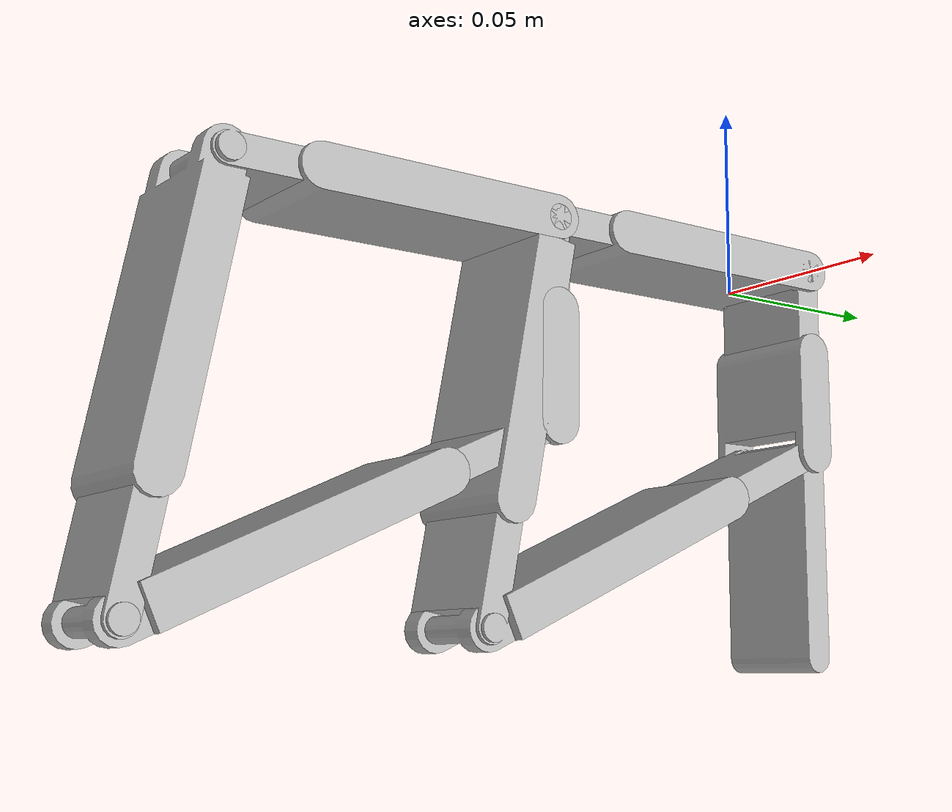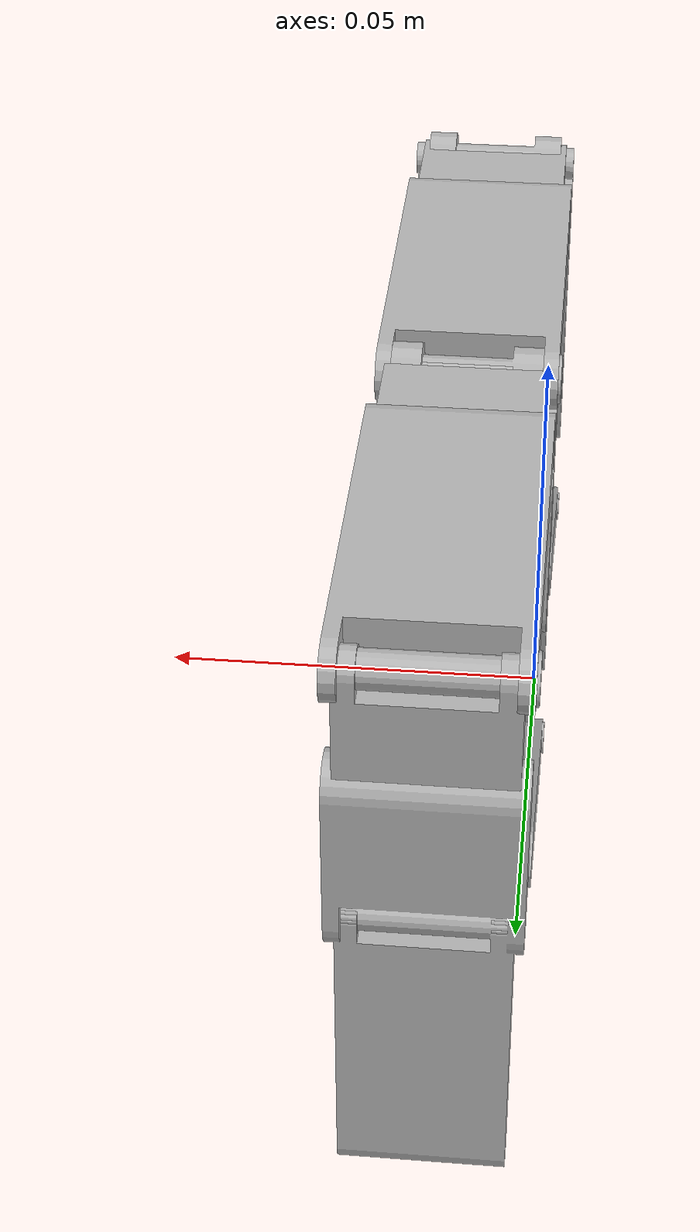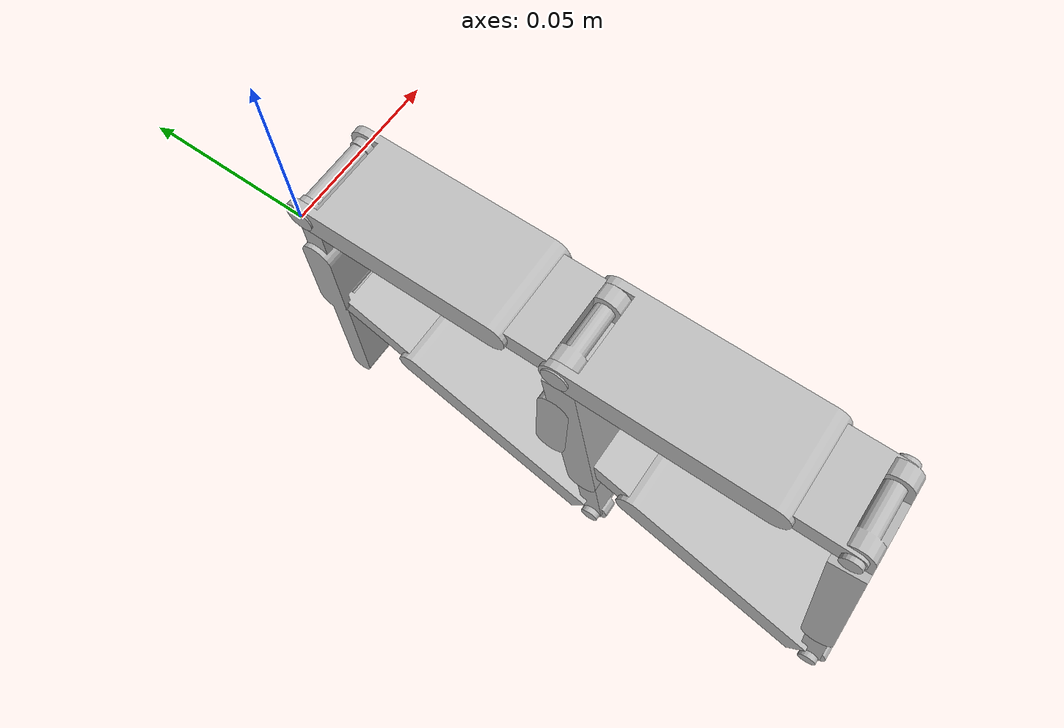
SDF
<sdf version='1.7'>
  <model name='larva54'>
    <link name='base_link'>
      <inertial>
        <pose>-0.0005 0 -0 0 -0 0</pose>
        <mass>5.02655e-05</mass>
        <inertia>
          <ixx>4.02124e-10</ixx>
          <ixy>-5.68087e-26</ixy>
          <ixz>-7.06335e-26</ixz>
          <iyy>2.05251e-10</iyy>
          <iyz>1.9387e-26</iyz>
          <izz>2.05251e-10</izz>
        </inertia>
      </inertial>
      <collision name='base_link_collision'>
        <pose>0 0 0 0 -0 0</pose>
        <geometry>
          <mesh>
            <scale>1 1 1</scale>
            <uri>model://larva54/meshes/base_link.STL</uri>
          </mesh>
        </geometry>
      </collision>
      <visual name='base_link_visual'>
        <pose>0 0 0 0 -0 0</pose>
        <geometry>
          <mesh>
            <scale>1 1 1</scale>
            <uri>model://larva54/meshes/base_link.STL</uri>
          </mesh>
        </geometry>
      </visual>
    </link>
    <joint name='rjoint11' type='revolute'>
      <pose relative_to='base_link'>-0.0005 0 0 0 -0 0</pose>
      <parent>base_link</parent>
      <child>rsec11</child>
      <axis>
        <xyz>1 0 0</xyz>
        <limit>
          <lower>-3.14</lower>
          <upper>3.14</upper>
          <effort>100</effort>
          <velocity>100</velocity>
        </limit>
        <dynamics>
          <damping>0.001</damping>
          <friction>0</friction>
          <spring_reference>0</spring_reference>
          <spring_stiffness>0.05</spring_stiffness>
        </dynamics>
      </axis>
    </joint>
    <link name='rsec11'>
      <pose relative_to='rjoint11'>0 0 0 0 -0 0</pose>
      <inertial>
        <pose>0.015 -0.027248 0 0 -0 0</pose>
        <mass>0.00814248</mass>
        <inertia>
          <ixx>2.58091e-06</ixx>
          <ixy>-3.71117e-21</ixy>
          <ixz>-6.24497e-22</ixz>
          <iyy>9.04351e-07</iyy>
          <iyz>1.02703e-20</iyz>
          <izz>3.27245e-06</izz>
        </inertia>
      </inertial>
      <collision name='rsec11_collision'>
        <pose>0 0 0 0 -0 0</pose>
        <geometry>
          <mesh>
            <scale>1 1 1</scale>
            <uri>model://larva54/meshes/rsec11.STL</uri>
          </mesh>
        </geometry>
      </collision>
      <visual name='rsec11_visual'>
        <pose>0 0 0 0 -0 0</pose>
        <geometry>
          <mesh>
            <scale>1 1 1</scale>
            <uri>model://larva54/meshes/rsec11.STL</uri>
          </mesh>
        </geometry>
      </visual>
    </link>
    <joint name='pjoint11' type='prismatic'>
      <pose relative_to='rsec11'>0.015 -0.008 0 0 -0 0</pose>
      <parent>rsec11</parent>
      <child>psec11</child>
      <axis>
        <xyz>0 -1 0</xyz>
        <limit>
          <lower>-0.01</lower>
          <upper>0.01</upper>
          <effort>100</effort>
          <velocity>100</velocity>
        </limit>
        <dynamics>
          <damping>0.001</damping>
          <friction>0</friction>
          <spring_reference>0</spring_reference>
          <spring_stiffness>0.05</spring_stiffness>
        </dynamics>
      </axis>
    </joint>
    <link name='psec11'>
      <pose relative_to='pjoint11'>0 0 0 0 -0 0</pose>
      <inertial>
        <pose>0 -0.044436 -0 0 -0 0</pose>
        <mass>0.00950291</mass>
        <inertia>
          <ixx>2.06911e-06</ixx>
          <ixy>1.61045e-21</ixy>
          <ixz>1.63625e-24</ixz>
          <iyy>6.31015e-07</iyy>
          <iyz>2.96462e-21</iyz>
          <izz>2.62322e-06</izz>
        </inertia>
      </inertial>
      <collision name='psec11_collision'>
        <pose>0 0 0 0 -0 0</pose>
        <geometry>
          <mesh>
            <scale>1 1 1</scale>
            <uri>model://larva54/meshes/psec11.STL</uri>
          </mesh>
        </geometry>
      </collision>
      <visual name='psec11_visual'>
        <pose>0 0 0 0 -0 0</pose>
        <geometry>
          <mesh>
            <scale>1 1 1</scale>
            <uri>model://larva54/meshes/psec11.STL</uri>
          </mesh>
        </geometry>
      </visual>
    </link>
    <joint name='rjoint12' type='revolute'>
      <pose relative_to='psec11'>-0.015 -0.072 0 0 -0 0</pose>
      <parent>psec11</parent>
      <child>rsec12</child>
      <axis>
        <xyz>1 0 0</xyz>
        <limit>
          <lower>-3.14</lower>
          <upper>3.14</upper>
          <effort>100</effort>
          <velocity>100</velocity>
        </limit>
        <dynamics>
          <damping>0.001</damping>
          <friction>0</friction>
          <spring_reference>0</spring_reference>
          <spring_stiffness>0.05</spring_stiffness>
        </dynamics>
      </axis>
    </joint>
    <link name='rsec12'>
      <pose relative_to='rjoint12'>0 0 0 0 -0 0</pose>
      <inertial>
        <pose>0.015 -0.005218 -0.028219 0 -0 0</pose>
        <mass>0.00900246</mass>
        <inertia>
          <ixx>3.53141e-06</ixx>
          <ixy>-1.21392e-21</ixy>
          <ixz>-2.01857e-21</ixz>
          <iyy>4.16191e-06</iyy>
          <iyz>-5.89211e-07</iyz>
          <izz>1.08448e-06</izz>
        </inertia>
      </inertial>
      <collision name='rsec12_collision'>
        <pose>0 0 0 0 -0 0</pose>
        <geometry>
          <mesh>
            <scale>1 1 1</scale>
            <uri>model://larva54/meshes/rsec12.STL</uri>
          </mesh>
        </geometry>
      </collision>
      <visual name='rsec12_visual'>
        <pose>0 0 0 0 -0 0</pose>
        <geometry>
          <mesh>
            <scale>1 1 1</scale>
            <uri>model://larva54/meshes/rsec12.STL</uri>
          </mesh>
        </geometry>
      </visual>
    </link>
    <joint name='pjoint12' type='prismatic'>
      <pose relative_to='rsec12'>0.015 -0.001455 -0.007867 -1.75365 0 0</pose>
      <parent>rsec12</parent>
      <child>psec12</child>
      <axis>
        <xyz>0 1 0</xyz>
        <limit>
          <lower>-0.01</lower>
          <upper>0.01</upper>
          <effort>100</effort>
          <velocity>100</velocity>
        </limit>
        <dynamics>
          <damping>0.001</damping>
          <friction>0</friction>
          <spring_reference>0</spring_reference>
          <spring_stiffness>0.05</spring_stiffness>
        </dynamics>
      </axis>
    </joint>
    <link name='psec12'>
      <pose relative_to='pjoint12'>0 0 0 0 -0 0</pose>
      <inertial>
        <pose>-0 0.05166 0 0 -0 0</pose>
        <mass>0.0113929</mass>
        <inertia>
          <ixx>3.53005e-06</ixx>
          <ixy>-1.63493e-21</ixy>
          <ixz>7.98891e-23</ixz>
          <iyy>7.5355e-07</iyy>
          <iyz>1.03232e-21</iyz>
          <izz>4.19127e-06</izz>
        </inertia>
      </inertial>
      <collision name='psec12_collision'>
        <pose>0 0 0 0 -0 0</pose>
        <geometry>
          <mesh>
            <scale>1 1 1</scale>
            <uri>model://larva54/meshes/psec12.STL</uri>
          </mesh>
        </geometry>
      </collision>
      <visual name='psec12_visual'>
        <pose>0 0 0 0 -0 0</pose>
        <geometry>
          <mesh>
            <scale>1 1 1</scale>
            <uri>model://larva54/meshes/psec12.STL</uri>
          </mesh>
        </geometry>
      </visual>
    </link>
    <joint name='rjoint13' type='revolute'>
      <pose relative_to='psec12'>-0.015462 0.084232 0 1.75365 -0 0</pose>
      <parent>psec12</parent>
      <child>rsec13</child>
      <axis>
        <xyz>1 0 0</xyz>
        <limit>
          <lower>-3.14</lower>
          <upper>3.14</upper>
          <effort>100</effort>
          <velocity>100</velocity>
        </limit>
        <dynamics>
          <damping>0.001</damping>
          <friction>0</friction>
          <spring_reference>0</spring_reference>
          <spring_stiffness>0.05</spring_stiffness>
        </dynamics>
      </axis>
    </joint>
    <link name='rsec13'>
      <pose relative_to='rjoint13'>0 0 0 0 -0 0</pose>
      <inertial>
        <pose>0.015058 0.030463 0.014045 0 -0 0</pose>
        <mass>0.0101125</mass>
        <inertia>
          <ixx>5.21578e-06</ixx>
          <ixy>1.42781e-08</ixy>
          <ixz>6.58265e-09</ixz>
          <iyy>1.96896e-06</iyy>
          <iyz>-1.88023e-06</iyz>
          <izz>5.18041e-06</izz>
        </inertia>
      </inertial>
      <collision name='rsec13_collision'>
        <pose>0 0 0 0 -0 0</pose>
        <geometry>
          <mesh>
            <scale>1 1 1</scale>
            <uri>model://larva54/meshes/rsec13.STL</uri>
          </mesh>
        </geometry>
      </collision>
      <visual name='rsec13_visual'>
        <pose>0 0 0 0 -0 0</pose>
        <geometry>
          <mesh>
            <scale>1 1 1</scale>
            <uri>model://larva54/meshes/rsec13.STL</uri>
          </mesh>
        </geometry>
      </visual>
    </link>
    <joint name='pjoint13' type='prismatic'>
      <pose relative_to='rsec13'>0.015462 0.007265 0.003349 0.43199 -0 0</pose>
      <parent>rsec13</parent>
      <child>psec13</child>
      <axis>
        <xyz>0 1 0</xyz>
        <limit>
          <lower>-0.01</lower>
          <upper>0.01</upper>
          <effort>100</effort>
          <velocity>100</velocity>
        </limit>
        <dynamics>
          <damping>0.001</damping>
          <friction>0</friction>
          <spring_reference>0</spring_reference>
          <spring_stiffness>0.05</spring_stiffness>
        </dynamics>
      </axis>
    </joint>
    <link name='psec13'>
      <pose relative_to='pjoint13'>0 0 0 0 -0 0</pose>
      <inertial>
        <pose>0 0.063485 0 0 -0 0</pose>
        <mass>0.0123379</mass>
        <inertia>
          <ixx>4.46824e-06</ixx>
          <ixy>-9.88411e-22</ixy>
          <ixz>1.0331e-22</ixz>
          <iyy>8.14818e-07</iyy>
          <iyz>8.62915e-21</iyz>
          <izz>5.18301e-06</izz>
        </inertia>
      </inertial>
      <collision name='psec13_collision'>
        <pose>0 0 0 0 -0 0</pose>
        <geometry>
          <mesh>
            <scale>1 1 1</scale>
            <uri>model://larva54/meshes/psec13.STL</uri>
          </mesh>
        </geometry>
      </collision>
      <visual name='psec13_visual'>
        <pose>0 0 0 0 -0 0</pose>
        <geometry>
          <mesh>
            <scale>1 1 1</scale>
            <uri>model://larva54/meshes/psec13.STL</uri>
          </mesh>
        </geometry>
      </visual>
    </link>
    <joint name='rjoint14' type='revolute'>
      <pose relative_to='psec13'>-0.015 0.09856 0 -0.43199 0 0</pose>
      <parent>psec13</parent>
      <child>rsec14</child>
      <axis>
        <xyz>1 0 0</xyz>
        <limit>
          <lower>-3.14</lower>
          <upper>3.14</upper>
          <effort>100</effort>
          <velocity>100</velocity>
        </limit>
        <dynamics>
          <damping>0.001</damping>
          <friction>0</friction>
          <spring_reference>0</spring_reference>
          <spring_stiffness>0.05</spring_stiffness>
        </dynamics>
      </axis>
    </joint>
    <link name='rsec14'>
      <pose relative_to='rjoint14'>0 0 0 0 -0 0</pose>
      <inertial>
        <pose>0.015 0 -0.015718 0 -0 0</pose>
        <mass>0.0137604</mass>
        <inertia>
          <ixx>2.3323e-06</ixx>
          <ixy>-5.55956e-22</ixy>
          <ixz>9.95418e-22</ixz>
          <iyy>3.25281e-06</iyy>
          <iyz>-2.17052e-21</iyz>
          <izz>1.08924e-06</izz>
        </inertia>
      </inertial>
      <collision name='rsec14_collision'>
        <pose>0 0 0 0 -0 0</pose>
        <geometry>
          <mesh>
            <scale>1 1 1</scale>
            <uri>model://larva54/meshes/rsec14.STL</uri>
          </mesh>
        </geometry>
      </collision>
      <visual name='rsec14_visual'>
        <pose>0 0 0 0 -0 0</pose>
        <geometry>
          <mesh>
            <scale>1 1 1</scale>
            <uri>model://larva54/meshes/rsec14.STL</uri>
          </mesh>
        </geometry>
      </visual>
    </link>
    <joint name='pjoint14' type='prismatic'>
      <pose relative_to='rsec14'>0.015 0 0.008 1.5708 -0 0</pose>
      <parent>rsec14</parent>
      <child>psec14</child>
      <axis>
        <xyz>0 1 0</xyz>
        <limit>
          <lower>-0.01</lower>
          <upper>0.01</upper>
          <effort>100</effort>
          <velocity>100</velocity>
        </limit>
        <dynamics>
          <damping>0.001</damping>
          <friction>0</friction>
          <spring_reference>0</spring_reference>
          <spring_stiffness>0.05</spring_stiffness>
        </dynamics>
      </axis>
    </joint>
    <link name='psec14'>
      <pose relative_to='pjoint14'>0 0 0 0 -0 0</pose>
      <inertial>
        <pose>-0 0.021804 -0 0 -0 0</pose>
        <mass>0.00694914</mass>
        <inertia>
          <ixx>5.77072e-07</ixx>
          <ixy>-5.29859e-22</ixy>
          <ixz>-2.7593e-22</ixz>
          <iyy>4.75978e-07</iyy>
          <iyz>-5.29396e-22</iyz>
          <izz>1.00012e-06</izz>
        </inertia>
      </inertial>
      <collision name='psec14_collision'>
        <pose>0 0 0 0 -0 0</pose>
        <geometry>
          <mesh>
            <scale>1 1 1</scale>
            <uri>model://larva54/meshes/psec14.STL</uri>
          </mesh>
        </geometry>
      </collision>
      <visual name='psec14_visual'>
        <pose>0 0 0 0 -0 0</pose>
        <geometry>
          <mesh>
            <scale>1 1 1</scale>
            <uri>model://larva54/meshes/psec14.STL</uri>
          </mesh>
        </geometry>
      </visual>
    </link>
    <joint name='rjoint21' type='revolute'>
      <pose relative_to='rsec12'>0 0 0 0 -0 0</pose>
      <parent>rsec12</parent>
      <child>rsec21</child>
      <axis>
        <xyz>1 0 0</xyz>
        <limit>
          <lower>-3.14</lower>
          <upper>3.14</upper>
          <effort>100</effort>
          <velocity>100</velocity>
        </limit>
        <dynamics>
          <damping>0.001</damping>
          <friction>0</friction>
          <spring_reference>0</spring_reference>
          <spring_stiffness>0.05</spring_stiffness>
        </dynamics>
      </axis>
    </joint>
    <link name='rsec21'>
      <pose relative_to='rjoint21'>0 0 0 0 -0 0</pose>
      <inertial>
        <pose>0.015 -0.027248 -0 0 -0 0</pose>
        <mass>0.00814248</mass>
        <inertia>
          <ixx>2.58091e-06</ixx>
          <ixy>-4.06461e-21</ixy>
          <ixz>-8.36274e-22</ixz>
          <iyy>9.04351e-07</iyy>
          <iyz>2.43522e-21</iyz>
          <izz>3.27245e-06</izz>
        </inertia>
      </inertial>
      <collision name='rsec21_collision'>
        <pose>0 0 0 0 -0 0</pose>
        <geometry>
          <mesh>
            <scale>1 1 1</scale>
            <uri>model://larva54/meshes/rsec21.STL</uri>
          </mesh>
        </geometry>
      </collision>
      <visual name='rsec21_visual'>
        <pose>0 0 0 0 -0 0</pose>
        <geometry>
          <mesh>
            <scale>1 1 1</scale>
            <uri>model://larva54/meshes/rsec21.STL</uri>
          </mesh>
        </geometry>
      </visual>
    </link>
    <joint name='linkjoint12' type='revolute'>
      <pose relative_to='rsec21'>0.0005 0 0 0 -0 0</pose>
      <parent>rsec21</parent>
      <child>link12</child>
      <axis>
        <xyz>-1 0 0</xyz>
        <limit>
          <effort>100</effort>
          <velocity>100</velocity>
          <lower>-1e+16</lower>
          <upper>1e+16</upper>
        </limit>
        <dynamics>
          <damping>0.001</damping>
          <friction>0</friction>
          <spring_reference>0</spring_reference>
          <spring_stiffness>0.05</spring_stiffness>
        </dynamics>
      </axis>
    </joint>
    <link name='link12'>
      <pose relative_to='linkjoint12'>0 0 0 0 -0 0</pose>
      <inertial>
        <pose>-0.0005 0 -0 0 -0 0</pose>
        <mass>5.02655e-05</mass>
        <inertia>
          <ixx>4.02124e-10</ixx>
          <ixy>-2.63933e-25</ixy>
          <ixz>4.39488e-28</ixz>
          <iyy>2.05251e-10</iyy>
          <iyz>4.52364e-26</iyz>
          <izz>2.05251e-10</izz>
        </inertia>
      </inertial>
      <collision name='link12_collision'>
        <pose>0 0 0 0 -0 0</pose>
        <geometry>
          <mesh>
            <scale>1 1 1</scale>
            <uri>model://larva54/meshes/link12.STL</uri>
          </mesh>
        </geometry>
      </collision>
      <visual name='link12_visual'>
        <pose>0 0 0 0 -0 0</pose>
        <geometry>
          <mesh>
            <scale>1 1 1</scale>
            <uri>model://larva54/meshes/link12.STL</uri>
          </mesh>
        </geometry>
      </visual>
    </link>
    <joint name='pjoint21' type='prismatic'>
      <pose relative_to='rsec21'>0.015 -0.008 0 0 -0 0</pose>
      <parent>rsec21</parent>
      <child>psec21</child>
      <axis>
        <xyz>0 -1 0</xyz>
        <limit>
          <lower>-0.01</lower>
          <upper>0.01</upper>
          <effort>100</effort>
          <velocity>100</velocity>
        </limit>
        <dynamics>
          <damping>0.001</damping>
          <friction>0</friction>
          <spring_reference>0</spring_reference>
          <spring_stiffness>0.05</spring_stiffness>
        </dynamics>
      </axis>
    </joint>
    <link name='psec21'>
      <pose relative_to='pjoint21'>0 0 0 0 -0 0</pose>
      <inertial>
        <pose>-0 -0.044436 -0 0 -0 0</pose>
        <mass>0.00950291</mass>
        <inertia>
          <ixx>2.06911e-06</ixx>
          <ixy>-1.11625e-21</ixy>
          <ixz>4.00861e-23</ixz>
          <iyy>6.31015e-07</iyy>
          <iyz>3.78518e-21</iyz>
          <izz>2.62322e-06</izz>
        </inertia>
      </inertial>
      <collision name='psec21_collision'>
        <pose>0 0 0 0 -0 0</pose>
        <geometry>
          <mesh>
            <scale>1 1 1</scale>
            <uri>model://larva54/meshes/psec21.STL</uri>
          </mesh>
        </geometry>
      </collision>
      <visual name='psec21_visual'>
        <pose>0 0 0 0 -0 0</pose>
        <geometry>
          <mesh>
            <scale>1 1 1</scale>
            <uri>model://larva54/meshes/psec21.STL</uri>
          </mesh>
        </geometry>
      </visual>
    </link>
    <joint name='rjoint22' type='revolute'>
      <pose relative_to='psec21'>-0.015 -0.072 0 0 -0 0</pose>
      <parent>psec21</parent>
      <child>rsec22</child>
      <axis>
        <xyz>1 0 0</xyz>
        <limit>
          <lower>-3.14</lower>
          <upper>3.14</upper>
          <effort>100</effort>
          <velocity>100</velocity>
        </limit>
        <dynamics>
          <damping>0.001</damping>
          <friction>0</friction>
          <spring_reference>0</spring_reference>
          <spring_stiffness>0.05</spring_stiffness>
        </dynamics>
      </axis>
    </joint>
    <link name='rsec22'>
      <pose relative_to='rjoint22'>0 0 0 0 -0 0</pose>
      <inertial>
        <pose>0.015 -0.005218 -0.028219 0 -0 0</pose>
        <mass>0.00900246</mass>
        <inertia>
          <ixx>3.53141e-06</ixx>
          <ixy>-5.12518e-22</ixy>
          <ixz>-9.17759e-21</ixz>
          <iyy>4.16191e-06</iyy>
          <iyz>-5.89211e-07</iyz>
          <izz>1.08448e-06</izz>
        </inertia>
      </inertial>
      <collision name='rsec22_collision'>
        <pose>0 0 0 0 -0 0</pose>
        <geometry>
          <mesh>
            <scale>1 1 1</scale>
            <uri>model://larva54/meshes/rsec22.STL</uri>
          </mesh>
        </geometry>
      </collision>
      <visual name='rsec22_visual'>
        <pose>0 0 0 0 -0 0</pose>
        <geometry>
          <mesh>
            <scale>1 1 1</scale>
            <uri>model://larva54/meshes/rsec22.STL</uri>
          </mesh>
        </geometry>
      </visual>
    </link>
    <joint name='pjoint22' type='prismatic'>
      <pose relative_to='rsec22'>0.015 -0.001455 -0.007867 -1.7536 0 0</pose>
      <parent>rsec22</parent>
      <child>psec22</child>
      <axis>
        <xyz>0 1 0</xyz>
        <limit>
          <lower>-0.01</lower>
          <upper>0.01</upper>
          <effort>100</effort>
          <velocity>100</velocity>
        </limit>
        <dynamics>
          <damping>0.001</damping>
          <friction>0</friction>
          <spring_reference>0</spring_reference>
          <spring_stiffness>0.05</spring_stiffness>
        </dynamics>
      </axis>
    </joint>
    <link name='psec22'>
      <pose relative_to='pjoint22'>0 0 0 0 -0 0</pose>
      <inertial>
        <pose>-0 0.05166 0 0 -0 0</pose>
        <mass>0.0113929</mass>
        <inertia>
          <ixx>3.53005e-06</ixx>
          <ixy>1.49596e-21</ixy>
          <ixz>-1.42024e-21</ixz>
          <iyy>7.5355e-07</iyy>
          <iyz>3.04402e-21</iyz>
          <izz>4.19127e-06</izz>
        </inertia>
      </inertial>
      <collision name='psec22_collision'>
        <pose>0 0 0 0 -0 0</pose>
        <geometry>
          <mesh>
            <scale>1 1 1</scale>
            <uri>model://larva54/meshes/psec22.STL</uri>
          </mesh>
        </geometry>
      </collision>
      <visual name='psec22_visual'>
        <pose>0 0 0 0 -0 0</pose>
        <geometry>
          <mesh>
            <scale>1 1 1</scale>
            <uri>model://larva54/meshes/psec22.STL</uri>
          </mesh>
        </geometry>
      </visual>
    </link>
    <joint name='rjoint23' type='revolute'>
      <pose relative_to='psec22'>-0.015462 0.084232 0 1.7536 -0 0</pose>
      <parent>psec22</parent>
      <child>rsec23</child>
      <axis>
        <xyz>1 0 0</xyz>
        <limit>
          <lower>-3.14</lower>
          <upper>3.14</upper>
          <effort>100</effort>
          <velocity>100</velocity>
        </limit>
        <dynamics>
          <damping>0.001</damping>
          <friction>0</friction>
          <spring_reference>0</spring_reference>
          <spring_stiffness>0.05</spring_stiffness>
        </dynamics>
      </axis>
    </joint>
    <link name='rsec23'>
      <pose relative_to='rjoint23'>0 0 0 0 -0 0</pose>
      <inertial>
        <pose>0.015058 0.030463 0.014045 0 -0 0</pose>
        <mass>0.0101125</mass>
        <inertia>
          <ixx>5.21578e-06</ixx>
          <ixy>1.42781e-08</ixy>
          <ixz>6.58265e-09</ixz>
          <iyy>1.96896e-06</iyy>
          <iyz>-1.88023e-06</iyz>
          <izz>5.18041e-06</izz>
        </inertia>
      </inertial>
      <collision name='rsec23_collision'>
        <pose>0 0 0 0 -0 0</pose>
        <geometry>
          <mesh>
            <scale>1 1 1</scale>
            <uri>model://larva54/meshes/rsec23.STL</uri>
          </mesh>
        </geometry>
      </collision>
      <visual name='rsec23_visual'>
        <pose>0 0 0 0 -0 0</pose>
        <geometry>
          <mesh>
            <scale>1 1 1</scale>
            <uri>model://larva54/meshes/rsec23.STL</uri>
          </mesh>
        </geometry>
      </visual>
    </link>
    <joint name='pjoint23' type='prismatic'>
      <pose relative_to='rsec23'>0.015462 0.007265 0.003349 0.43199 -0 0</pose>
      <parent>rsec23</parent>
      <child>psec23</child>
      <axis>
        <xyz>0 1 0</xyz>
        <limit>
          <lower>-0.01</lower>
          <upper>0.01</upper>
          <effort>100</effort>
          <velocity>100</velocity>
        </limit>
        <dynamics>
          <damping>0.001</damping>
          <friction>0</friction>
          <spring_reference>0</spring_reference>
          <spring_stiffness>0.05</spring_stiffness>
        </dynamics>
      </axis>
    </joint>
    <link name='psec23'>
      <pose relative_to='pjoint23'>0 0 0 0 -0 0</pose>
      <inertial>
        <pose>-0 0.063485 -0 0 -0 0</pose>
        <mass>0.0123379</mass>
        <inertia>
          <ixx>4.46824e-06</ixx>
          <ixy>-9.17962e-22</ixy>
          <ixz>-2.82036e-21</ixz>
          <iyy>8.14818e-07</iyy>
          <iyz>2.38228e-21</iyz>
          <izz>5.18301e-06</izz>
        </inertia>
      </inertial>
      <collision name='psec23_collision'>
        <pose>0 0 0 0 -0 0</pose>
        <geometry>
          <mesh>
            <scale>1 1 1</scale>
            <uri>model://larva54/meshes/psec23.STL</uri>
          </mesh>
        </geometry>
      </collision>
      <visual name='psec23_visual'>
        <pose>0 0 0 0 -0 0</pose>
        <geometry>
          <mesh>
            <scale>1 1 1</scale>
            <uri>model://larva54/meshes/psec23.STL</uri>
          </mesh>
        </geometry>
      </visual>
    </link>
    <joint name='rjoint24' type='revolute'>
      <pose relative_to='psec23'>-0.015 0.09856 0 -0.43199 0 0</pose>
      <parent>psec23</parent>
      <child>rsec24</child>
      <axis>
        <xyz>1 0 0</xyz>
        <limit>
          <lower>-3.14</lower>
          <upper>3.14</upper>
          <effort>100</effort>
          <velocity>100</velocity>
        </limit>
        <dynamics>
          <damping>0.001</damping>
          <friction>0</friction>
          <spring_reference>0</spring_reference>
          <spring_stiffness>0.05</spring_stiffness>
        </dynamics>
      </axis>
    </joint>
    <link name='rsec24'>
      <pose relative_to='rjoint24'>0 0 0 0 -0 0</pose>
      <inertial>
        <pose>0.015 0 0.010722 0 -0 0</pose>
        <mass>0.00425748</mass>
        <inertia>
          <ixx>2.63198e-07</ixx>
          <ixy>5.22757e-22</ixy>
          <ixz>1.1883e-21</ixz>
          <iyy>6.29591e-07</iyy>
          <iyz>1.05879e-21</iyz>
          <izz>4.58224e-07</izz>
        </inertia>
      </inertial>
      <collision name='rsec24_collision'>
        <pose>0 0 0 0 -0 0</pose>
        <geometry>
          <mesh>
            <scale>1 1 1</scale>
            <uri>model://larva54/meshes/rsec24.STL</uri>
          </mesh>
        </geometry>
      </collision>
      <visual name='rsec24_visual'>
        <pose>0 0 0 0 -0 0</pose>
        <geometry>
          <mesh>
            <scale>1 1 1</scale>
            <uri>model://larva54/meshes/rsec24.STL</uri>
          </mesh>
        </geometry>
      </visual>
    </link>
    <joint name='pjoint24' type='prismatic'>
      <pose relative_to='rsec24'>0.015 0 0.008 -1.5708 0 -3.14159</pose>
      <parent>rsec24</parent>
      <child>psec24</child>
      <axis>
        <xyz>0 -1 0</xyz>
        <limit>
          <lower>-0.01</lower>
          <upper>0.01</upper>
          <effort>100</effort>
          <velocity>100</velocity>
        </limit>
        <dynamics>
          <damping>0.001</damping>
          <friction>0</friction>
          <spring_reference>0</spring_reference>
          <spring_stiffness>0.05</spring_stiffness>
        </dynamics>
      </axis>
    </joint>
    <link name='psec24'>
      <pose relative_to='pjoint24'>0 0 0 0 -0 0</pose>
      <inertial>
        <pose>0 -0.021804 -0 0 -0 0</pose>
        <mass>0.00694914</mass>
        <inertia>
          <ixx>5.77072e-07</ixx>
          <ixy>-3.24751e-22</ixy>
          <ixz>-2.81407e-22</ixz>
          <iyy>4.75978e-07</iyy>
          <iyz>2.38228e-22</iyz>
          <izz>1.00012e-06</izz>
        </inertia>
      </inertial>
      <collision name='psec24_collision'>
        <pose>0 0 0 0 -0 0</pose>
        <geometry>
          <mesh>
            <scale>1 1 1</scale>
            <uri>model://larva54/meshes/psec24.STL</uri>
          </mesh>
        </geometry>
      </collision>
      <visual name='psec24_visual'>
        <pose>0 0 0 0 -0 0</pose>
        <geometry>
          <mesh>
            <scale>1 1 1</scale>
            <uri>model://larva54/meshes/psec24.STL</uri>
          </mesh>
        </geometry>
      </visual>
    </link>

    <joint name='loop_joint01' type='revolute'>
      <pose>-0 0 0.0000 0 -0 0</pose>
      <parent>psec14</parent>
      <child>base_link</child>
      <axis>
        <xyz>0 0 0</xyz>
        <limit>
          <lower>0</lower>
          <upper>0</upper>
          <effort>0</effort>
          <velocity>0</velocity>
        </limit>
        <dynamics>
          <damping>0</damping>
          <friction>0</friction>
          <spring_reference>0</spring_reference>
          <spring_stiffness>1.0</spring_stiffness>
        </dynamics>
      </axis>
    </joint>

    <joint name='loop_joint02' type='revolute'>
      <pose>0 0 0.0000 0 -0 0</pose>
      <parent>psec24</parent>
      <child>link12</child>
      <axis>
        <xyz>0 0 0</xyz>
        <limit>
          <lower>0</lower>
          <upper>0</upper>
          <effort>0</effort>
          <velocity>0</velocity>
        </limit>
        <dynamics>
          <damping>0</damping>
          <friction>0</friction>
          <spring_reference>0</spring_reference>
          <spring_stiffness>1.0</spring_stiffness>
        </dynamics>
      </axis>
    </joint>

    <plugin name="gazebo_ros_control" filename="libgazebo_ros_control.so">
      <controlPeriod>0.001</controlPeriod>
      <robotSimType>gazebo_ros_control/DefaultRobotHWSim</robotSimType>
      <legacyModeNS>true</legacyModeNS>
    </plugin>

  </model>
</sdf>
